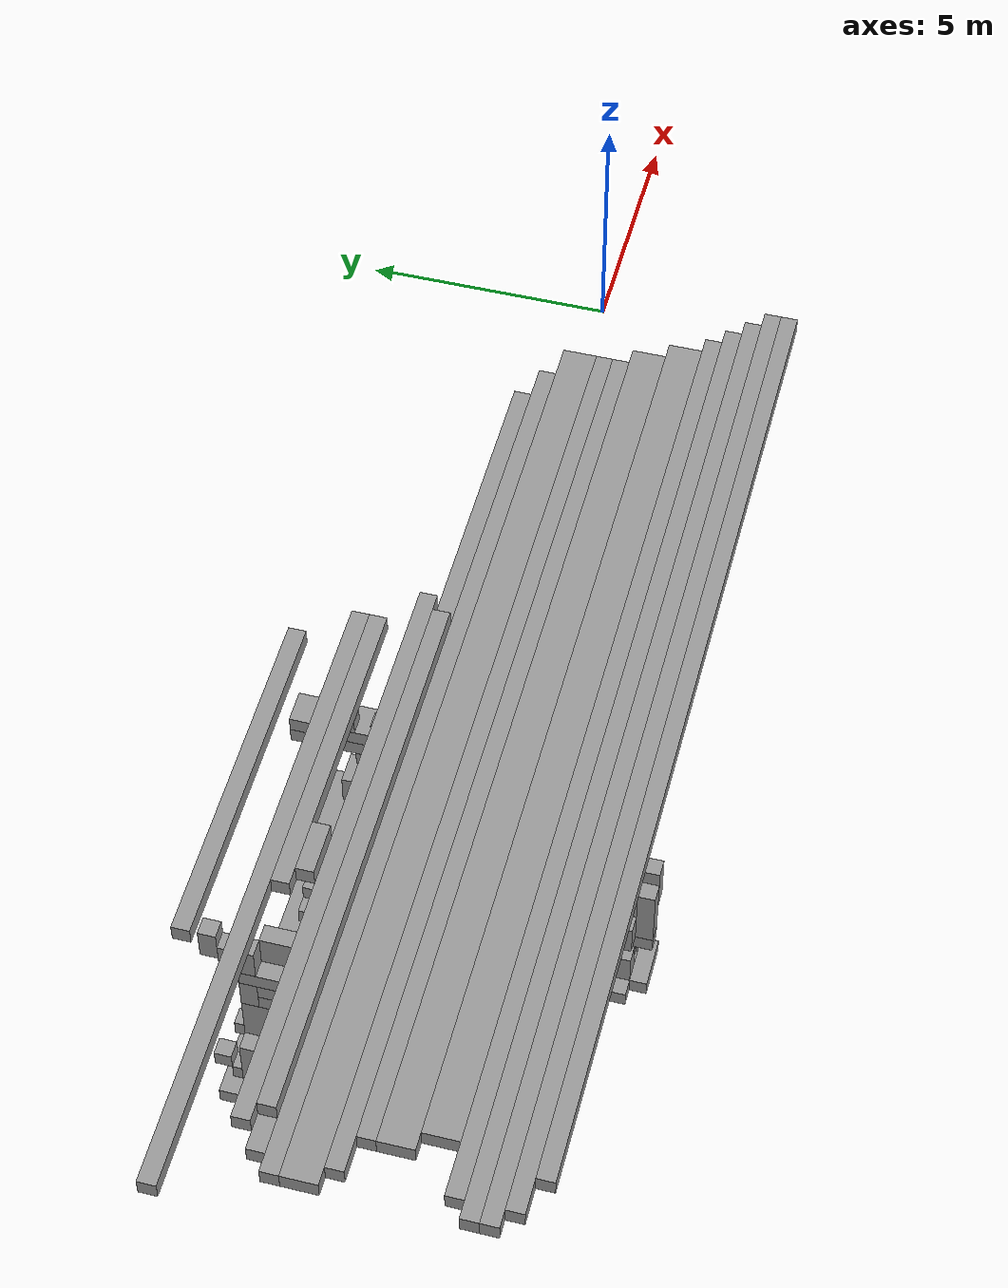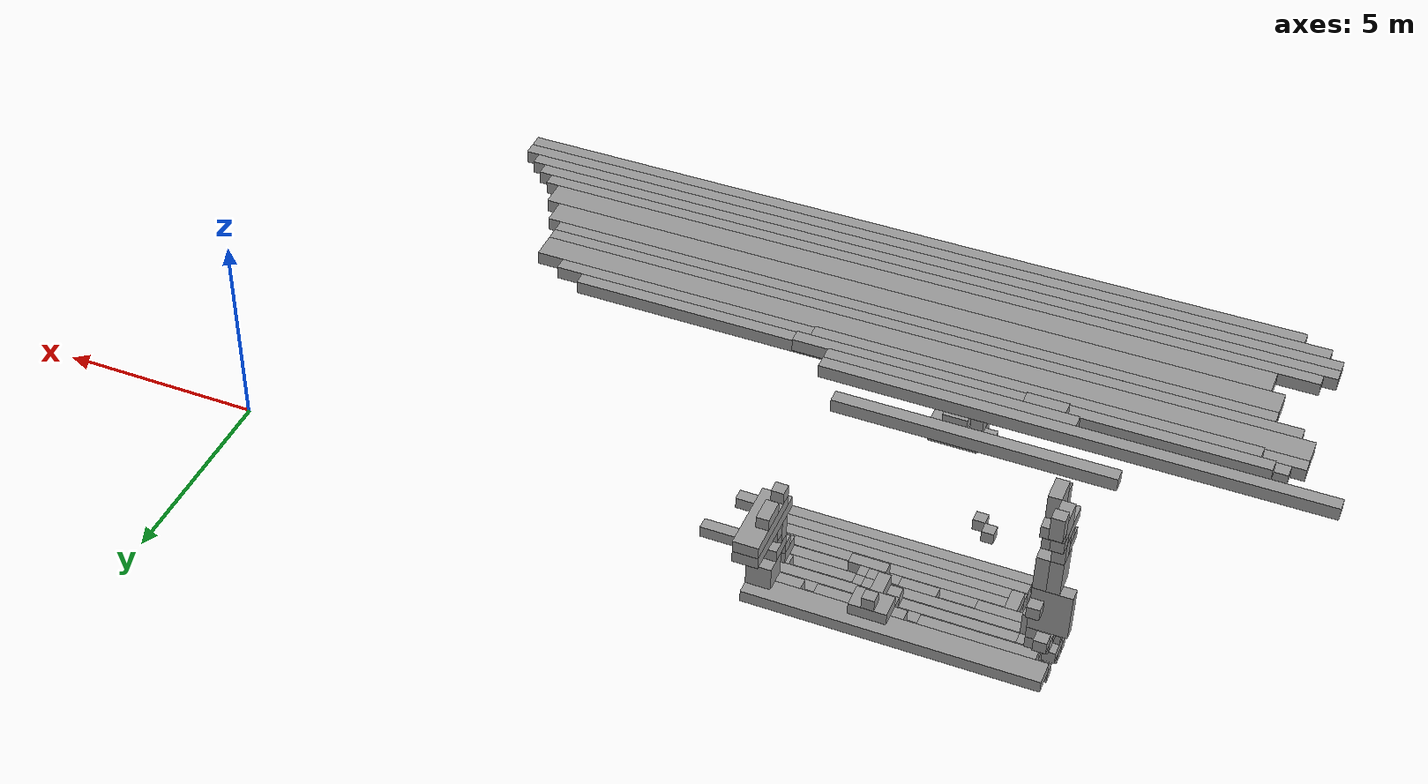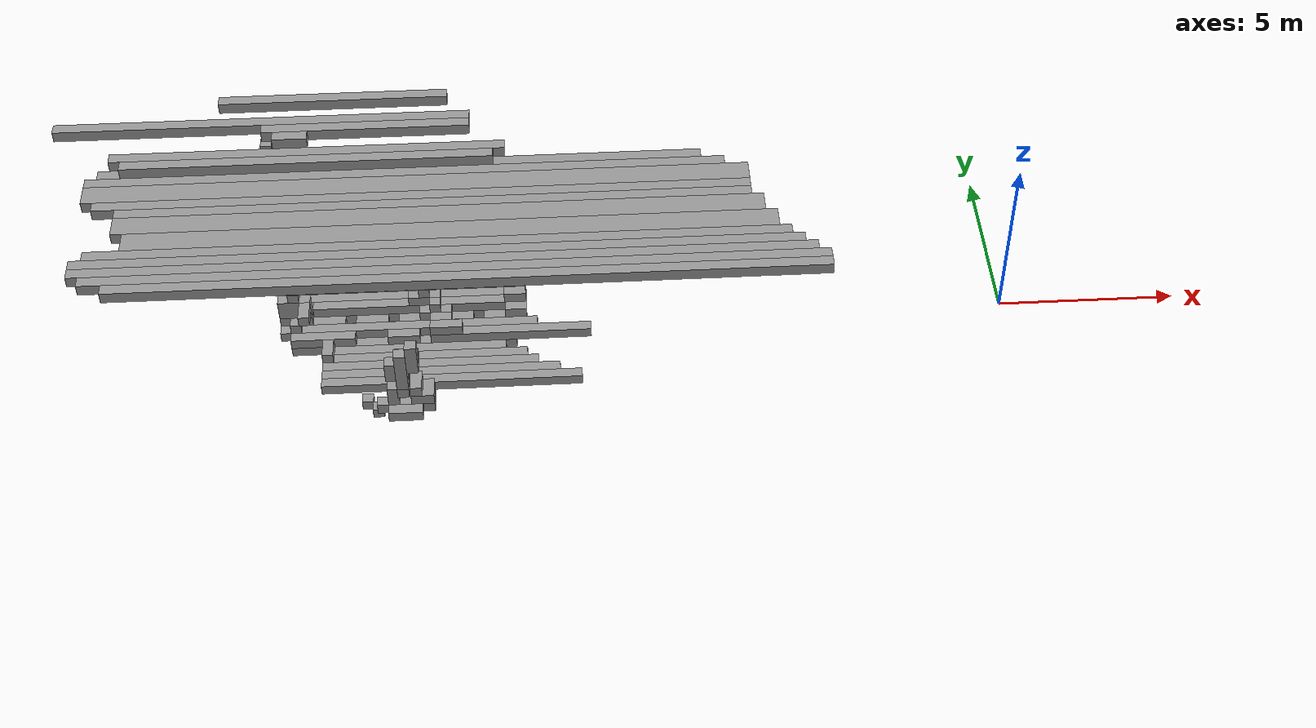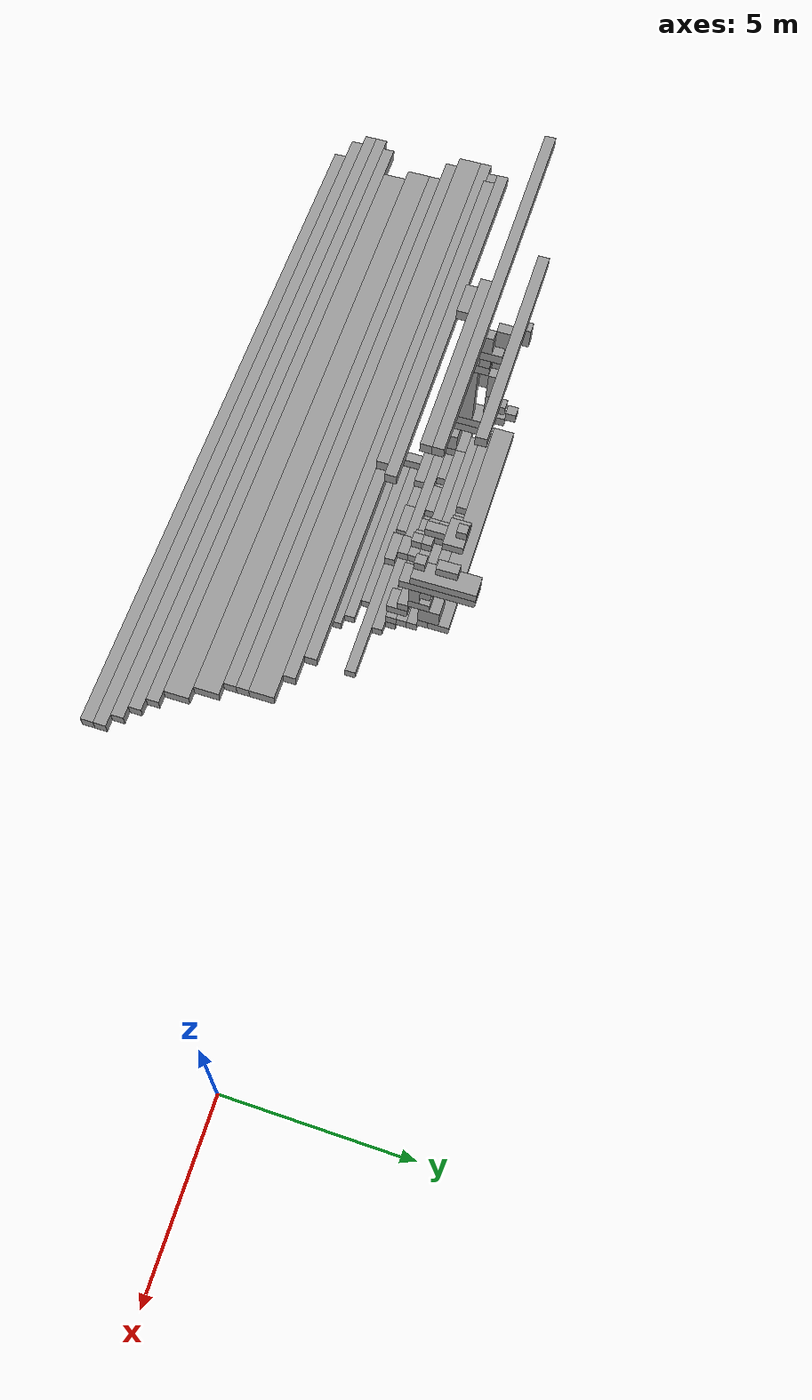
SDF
<sdf version="1.6">
 <world name="bt_world">
  <include><uri>model://sun</uri></include>
  <model name="obstacle_241">
   <static>true</static>
   <pose>-20.099999999999998 0.75 7.05 0 0 0</pose>
   <link name="link">
    <collision name="collision">
     <geometry><box><size>10.799999999999999 0.3 0.3</size></box></geometry>
    </collision>
    <visual name="visual">
     <geometry><box><size>10.799999999999999 0.3 0.3</size></box></geometry>
     <material><ambient>0.5 0.5 0.5 1</ambient><diffuse>0.6 0.6 0.6 1</diffuse></material>
    </visual>
   </link>
  </model>
  <model name="obstacle_327">
   <static>true</static>
   <pose>-15.299999999999999 -4.05 6.45 0 0 0</pose>
   <link name="link">
    <collision name="collision">
     <geometry><box><size>18.599999999999998 0.3 0.3</size></box></geometry>
    </collision>
    <visual name="visual">
     <geometry><box><size>18.599999999999998 0.3 0.3</size></box></geometry>
     <material><ambient>0.5 0.5 0.5 1</ambient><diffuse>0.6 0.6 0.6 1</diffuse></material>
    </visual>
   </link>
  </model>
  <model name="obstacle_328">
   <static>true</static>
   <pose>-15.45 -3.75 6.45 0 0 0</pose>
   <link name="link">
    <collision name="collision"><geometry><box><size>18.3 0.3 0.3</size></box></geometry></collision>
    <visual name="visual">
     <geometry><box><size>18.3 0.3 0.3</size></box></geometry>
     <material><ambient>0.5 0.5 0.5 1</ambient><diffuse>0.6 0.6 0.6 1</diffuse></material>
    </visual>
   </link>
  </model>
  <model name="obstacle_330">
   <static>true</static>
   <pose>-16.05 -1.2 6.45 0 0 0</pose>
   <link name="link">
    <collision name="collision">
     <geometry><box><size>17.099999999999998 0.6 0.3</size></box></geometry>
    </collision>
    <visual name="visual">
     <geometry><box><size>17.099999999999998 0.6 0.3</size></box></geometry>
     <material><ambient>0.5 0.5 0.5 1</ambient><diffuse>0.6 0.6 0.6 1</diffuse></material>
    </visual>
   </link>
  </model>
  <model name="obstacle_336">
   <static>true</static>
   <pose>-16.349999999999998 -0.75 6.45 0 0 0</pose>
   <link name="link">
    <collision name="collision"><geometry><box><size>16.5 0.3 0.3</size></box></geometry></collision>
    <visual name="visual">
     <geometry><box><size>16.5 0.3 0.3</size></box></geometry>
     <material><ambient>0.5 0.5 0.5 1</ambient><diffuse>0.6 0.6 0.6 1</diffuse></material>
    </visual>
   </link>
  </model>
  <model name="obstacle_379">
   <static>true</static>
   <pose>-15.0 -4.35 6.45 0 0 0</pose>
   <link name="link">
    <collision name="collision">
     <geometry><box><size>18.599999999999998 0.3 0.3</size></box></geometry>
    </collision>
    <visual name="visual">
     <geometry><box><size>18.599999999999998 0.3 0.3</size></box></geometry>
     <material><ambient>0.5 0.5 0.5 1</ambient><diffuse>0.6 0.6 0.6 1</diffuse></material>
    </visual>
   </link>
  </model>
  <model name="obstacle_380">
   <static>true</static>
   <pose>-15.45 -3.4499999999999997 6.45 0 0 0</pose>
   <link name="link">
    <collision name="collision"><geometry><box><size>17.7 0.3 0.3</size></box></geometry></collision>
    <visual name="visual">
     <geometry><box><size>17.7 0.3 0.3</size></box></geometry>
     <material><ambient>0.5 0.5 0.5 1</ambient><diffuse>0.6 0.6 0.6 1</diffuse></material>
    </visual>
   </link>
  </model>
  <model name="obstacle_381">
   <static>true</static>
   <pose>-15.899999999999999 -1.65 6.45 0 0 0</pose>
   <link name="link">
    <collision name="collision"><geometry><box><size>16.8 0.3 0.3</size></box></geometry></collision>
    <visual name="visual">
     <geometry><box><size>16.8 0.3 0.3</size></box></geometry>
     <material><ambient>0.5 0.5 0.5 1</ambient><diffuse>0.6 0.6 0.6 1</diffuse></material>
    </visual>
   </link>
  </model>
  <model name="obstacle_384">
   <static>true</static>
   <pose>-16.5 -0.44999999999999996 6.45 0 0 0</pose>
   <link name="link">
    <collision name="collision"><geometry><box><size>15.6 0.3 0.3</size></box></geometry></collision>
    <visual name="visual">
     <geometry><box><size>15.6 0.3 0.3</size></box></geometry>
     <material><ambient>0.5 0.5 0.5 1</ambient><diffuse>0.6 0.6 0.6 1</diffuse></material>
    </visual>
   </link>
  </model>
  <model name="obstacle_414">
   <static>true</static>
   <pose>-18.9 -0.15 6.75 0 0 0</pose>
   <link name="link">
    <collision name="collision"><geometry><box><size>10.2 0.3 0.3</size></box></geometry></collision>
    <visual name="visual">
     <geometry><box><size>10.2 0.3 0.3</size></box></geometry>
     <material><ambient>0.5 0.5 0.5 1</ambient><diffuse>0.6 0.6 0.6 1</diffuse></material>
    </visual>
   </link>
  </model>
  <model name="obstacle_433">
   <static>true</static>
   <pose>-14.7 -4.6499999999999995 6.45 0 0 0</pose>
   <link name="link">
    <collision name="collision"><geometry><box><size>18.0 0.3 0.3</size></box></geometry></collision>
    <visual name="visual">
     <geometry><box><size>18.0 0.3 0.3</size></box></geometry>
     <material><ambient>0.5 0.5 0.5 1</ambient><diffuse>0.6 0.6 0.6 1</diffuse></material>
    </visual>
   </link>
  </model>
  <model name="obstacle_438">
   <static>true</static>
   <pose>-15.45 -2.4 6.45 0 0 0</pose>
   <link name="link">
    <collision name="collision"><geometry><box><size>16.5 0.6 0.3</size></box></geometry></collision>
    <visual name="visual">
     <geometry><box><size>16.5 0.6 0.3</size></box></geometry>
     <material><ambient>0.5 0.5 0.5 1</ambient><diffuse>0.6 0.6 0.6 1</diffuse></material>
    </visual>
   </link>
  </model>
  <model name="obstacle_443">
   <static>true</static>
   <pose>-15.6 -1.95 6.45 0 0 0</pose>
   <link name="link">
    <collision name="collision"><geometry><box><size>16.2 0.3 0.3</size></box></geometry></collision>
    <visual name="visual">
     <geometry><box><size>16.2 0.3 0.3</size></box></geometry>
     <material><ambient>0.5 0.5 0.5 1</ambient><diffuse>0.6 0.6 0.6 1</diffuse></material>
    </visual>
   </link>
  </model>
  <model name="obstacle_448">
   <static>true</static>
   <pose>-18.9 -0.44999999999999996 6.75 0 0 0</pose>
   <link name="link">
    <collision name="collision"><geometry><box><size>9.6 0.3 0.3</size></box></geometry></collision>
    <visual name="visual">
     <geometry><box><size>9.6 0.3 0.3</size></box></geometry>
     <material><ambient>0.5 0.5 0.5 1</ambient><diffuse>0.6 0.6 0.6 1</diffuse></material>
    </visual>
   </link>
  </model>
  <model name="obstacle_479">
   <static>true</static>
   <pose>-15.149999999999999 -3.0 6.45 0 0 0</pose>
   <link name="link">
    <collision name="collision"><geometry><box><size>16.5 0.6 0.3</size></box></geometry></collision>
    <visual name="visual">
     <geometry><box><size>16.5 0.6 0.3</size></box></geometry>
     <material><ambient>0.5 0.5 0.5 1</ambient><diffuse>0.6 0.6 0.6 1</diffuse></material>
    </visual>
   </link>
  </model>
  <model name="obstacle_751">
   <static>true</static>
   <pose>-18.3 1.65 7.05 0 0 0</pose>
   <link name="link">
    <collision name="collision"><geometry><box><size>6.0 0.3 0.3</size></box></geometry></collision>
    <visual name="visual">
     <geometry><box><size>6.0 0.3 0.3</size></box></geometry>
     <material><ambient>0.5 0.5 0.5 1</ambient><diffuse>0.6 0.6 0.6 1</diffuse></material>
    </visual>
   </link>
  </model>
  <model name="obstacle_859">
   <static>true</static>
   <pose>-20.25 1.05 2.4 0 0 0</pose>
   <link name="link">
    <collision name="collision">
     <geometry><box><size>0.8999999999999999 0.3 1.2</size></box></geometry>
    </collision>
    <visual name="visual">
     <geometry><box><size>0.8999999999999999 0.3 1.2</size></box></geometry>
     <material><ambient>0.5 0.5 0.5 1</ambient><diffuse>0.6 0.6 0.6 1</diffuse></material>
    </visual>
   </link>
  </model>
  <model name="obstacle_915">
   <static>true</static>
   <pose>-18.3 -0.15 0.15 0 0 0</pose>
   <link name="link">
    <collision name="collision"><geometry><box><size>4.2 0.3 0.3</size></box></geometry></collision>
    <visual name="visual">
     <geometry><box><size>4.2 0.3 0.3</size></box></geometry>
     <material><ambient>0.5 0.5 0.5 1</ambient><diffuse>0.6 0.6 0.6 1</diffuse></material>
    </visual>
   </link>
  </model>
  <model name="obstacle_916">
   <static>true</static>
   <pose>-19.5 0.15 0.15 0 0 0</pose>
   <link name="link">
    <collision name="collision">
     <geometry><box><size>1.7999999999999998 0.3 0.3</size></box></geometry>
    </collision>
    <visual name="visual">
     <geometry><box><size>1.7999999999999998 0.3 0.3</size></box></geometry>
     <material><ambient>0.5 0.5 0.5 1</ambient><diffuse>0.6 0.6 0.6 1</diffuse></material>
    </visual>
   </link>
  </model>
  <model name="obstacle_917">
   <static>true</static>
   <pose>-19.95 0.3 0.44999999999999996 0 0 0</pose>
   <link name="link">
    <collision name="collision">
     <geometry><box><size>0.8999999999999999 0.6 0.3</size></box></geometry>
    </collision>
    <visual name="visual">
     <geometry><box><size>0.8999999999999999 0.6 0.3</size></box></geometry>
     <material><ambient>0.5 0.5 0.5 1</ambient><diffuse>0.6 0.6 0.6 1</diffuse></material>
    </visual>
   </link>
  </model>
  <model name="obstacle_918">
   <static>true</static>
   <pose>-19.95 0.15 0.8999999999999999 0 0 0</pose>
   <link name="link">
    <collision name="collision">
     <geometry><box><size>0.8999999999999999 0.3 0.6</size></box></geometry>
    </collision>
    <visual name="visual">
     <geometry><box><size>0.8999999999999999 0.3 0.6</size></box></geometry>
     <material><ambient>0.5 0.5 0.5 1</ambient><diffuse>0.6 0.6 0.6 1</diffuse></material>
    </visual>
   </link>
  </model>
  <model name="obstacle_919">
   <static>true</static>
   <pose>-20.099999999999998 0.6 1.65 0 0 0</pose>
   <link name="link">
    <collision name="collision"><geometry><box><size>0.6 1.2 0.3</size></box></geometry></collision>
    <visual name="visual">
     <geometry><box><size>0.6 1.2 0.3</size></box></geometry>
     <material><ambient>0.5 0.5 0.5 1</ambient><diffuse>0.6 0.6 0.6 1</diffuse></material>
    </visual>
   </link>
  </model>
  <model name="obstacle_920">
   <static>true</static>
   <pose>-20.099999999999998 0.6 4.05 0 0 0</pose>
   <link name="link">
    <collision name="collision"><geometry><box><size>0.6 0.6 0.3</size></box></geometry></collision>
    <visual name="visual">
     <geometry><box><size>0.6 0.6 0.3</size></box></geometry>
     <material><ambient>0.5 0.5 0.5 1</ambient><diffuse>0.6 0.6 0.6 1</diffuse></material>
    </visual>
   </link>
  </model>
  <model name="obstacle_921">
   <static>true</static>
   <pose>-20.099999999999998 0.75 4.6499999999999995 0 0 0</pose>
   <link name="link">
    <collision name="collision">
     <geometry><box><size>0.6 0.8999999999999999 0.3</size></box></geometry>
    </collision>
    <visual name="visual">
     <geometry><box><size>0.6 0.8999999999999999 0.3</size></box></geometry>
     <material><ambient>0.5 0.5 0.5 1</ambient><diffuse>0.6 0.6 0.6 1</diffuse></material>
    </visual>
   </link>
  </model>
  <model name="obstacle_923">
   <static>true</static>
   <pose>-20.25 0.8999999999999999 3.4499999999999997 0 0 0</pose>
   <link name="link">
    <collision name="collision">
     <geometry><box><size>0.3 0.6 0.8999999999999999</size></box></geometry>
    </collision>
    <visual name="visual">
     <geometry><box><size>0.3 0.6 0.8999999999999999</size></box></geometry>
     <material><ambient>0.5 0.5 0.5 1</ambient><diffuse>0.6 0.6 0.6 1</diffuse></material>
    </visual>
   </link>
  </model>
  <model name="obstacle_924">
   <static>true</static>
   <pose>-20.099999999999998 0.75 4.35 0 0 0</pose>
   <link name="link">
    <collision name="collision"><geometry><box><size>0.6 0.3 0.3</size></box></geometry></collision>
    <visual name="visual">
     <geometry><box><size>0.6 0.3 0.3</size></box></geometry>
     <material><ambient>0.5 0.5 0.5 1</ambient><diffuse>0.6 0.6 0.6 1</diffuse></material>
    </visual>
   </link>
  </model>
  <model name="obstacle_925">
   <static>true</static>
   <pose>-17.25 1.05 0.44999999999999996 0 0 0</pose>
   <link name="link">
    <collision name="collision"><geometry><box><size>6.3 0.3 0.3</size></box></geometry></collision>
    <visual name="visual">
     <geometry><box><size>6.3 0.3 0.3</size></box></geometry>
     <material><ambient>0.5 0.5 0.5 1</ambient><diffuse>0.6 0.6 0.6 1</diffuse></material>
    </visual>
   </link>
  </model>
  <model name="obstacle_926">
   <static>true</static>
   <pose>-20.25 1.05 4.2 0 0 0</pose>
   <link name="link">
    <collision name="collision"><geometry><box><size>0.3 0.3 0.6</size></box></geometry></collision>
    <visual name="visual">
     <geometry><box><size>0.3 0.3 0.6</size></box></geometry>
     <material><ambient>0.5 0.5 0.5 1</ambient><diffuse>0.6 0.6 0.6 1</diffuse></material>
    </visual>
   </link>
  </model>
  <model name="obstacle_927">
   <static>true</static>
   <pose>-20.25 1.2 5.1 0 0 0</pose>
   <link name="link">
    <collision name="collision"><geometry><box><size>0.3 0.6 0.6</size></box></geometry></collision>
    <visual name="visual">
     <geometry><box><size>0.3 0.6 0.6</size></box></geometry>
     <material><ambient>0.5 0.5 0.5 1</ambient><diffuse>0.6 0.6 0.6 1</diffuse></material>
    </visual>
   </link>
  </model>
  <model name="obstacle_928">
   <static>true</static>
   <pose>-16.95 1.5 0.75 0 0 0</pose>
   <link name="link">
    <collision name="collision">
     <geometry><box><size>6.8999999999999995 0.6 0.3</size></box></geometry>
    </collision>
    <visual name="visual">
     <geometry><box><size>6.8999999999999995 0.6 0.3</size></box></geometry>
     <material><ambient>0.5 0.5 0.5 1</ambient><diffuse>0.6 0.6 0.6 1</diffuse></material>
    </visual>
   </link>
  </model>
  <model name="obstacle_929">
   <static>true</static>
   <pose>-20.25 1.3499999999999999 1.65 0 0 0</pose>
   <link name="link">
    <collision name="collision"><geometry><box><size>0.3 0.3 0.3</size></box></geometry></collision>
    <visual name="visual">
     <geometry><box><size>0.3 0.3 0.3</size></box></geometry>
     <material><ambient>0.5 0.5 0.5 1</ambient><diffuse>0.6 0.6 0.6 1</diffuse></material>
    </visual>
   </link>
  </model>
  <model name="obstacle_930">
   <static>true</static>
   <pose>-20.25 1.3499999999999999 4.6499999999999995 0 0 0</pose>
   <link name="link">
    <collision name="collision"><geometry><box><size>0.3 0.3 0.3</size></box></geometry></collision>
    <visual name="visual">
     <geometry><box><size>0.3 0.3 0.3</size></box></geometry>
     <material><ambient>0.5 0.5 0.5 1</ambient><diffuse>0.6 0.6 0.6 1</diffuse></material>
    </visual>
   </link>
  </model>
  <model name="obstacle_931">
   <static>true</static>
   <pose>-20.25 1.65 1.95 0 0 0</pose>
   <link name="link">
    <collision name="collision"><geometry><box><size>0.3 0.3 0.3</size></box></geometry></collision>
    <visual name="visual">
     <geometry><box><size>0.3 0.3 0.3</size></box></geometry>
     <material><ambient>0.5 0.5 0.5 1</ambient><diffuse>0.6 0.6 0.6 1</diffuse></material>
    </visual>
   </link>
  </model>
  <model name="obstacle_932">
   <static>true</static>
   <pose>-20.25 1.65 5.3999999999999995 0 0 0</pose>
   <link name="link">
    <collision name="collision"><geometry><box><size>0.3 0.3 0.6</size></box></geometry></collision>
    <visual name="visual">
     <geometry><box><size>0.3 0.3 0.6</size></box></geometry>
     <material><ambient>0.5 0.5 0.5 1</ambient><diffuse>0.6 0.6 0.6 1</diffuse></material>
    </visual>
   </link>
  </model>
  <model name="obstacle_943">
   <static>true</static>
   <pose>-16.95 -0.3 -0.15 0 0 0</pose>
   <link name="link">
    <collision name="collision"><geometry><box><size>6.3 0.6 0.3</size></box></geometry></collision>
    <visual name="visual">
     <geometry><box><size>6.3 0.6 0.3</size></box></geometry>
     <material><ambient>0.5 0.5 0.5 1</ambient><diffuse>0.6 0.6 0.6 1</diffuse></material>
    </visual>
   </link>
  </model>
  <model name="obstacle_944">
   <static>true</static>
   <pose>-19.2 -0.44999999999999996 0.15 0 0 0</pose>
   <link name="link">
    <collision name="collision">
     <geometry><box><size>1.7999999999999998 0.3 0.3</size></box></geometry>
    </collision>
    <visual name="visual">
     <geometry><box><size>1.7999999999999998 0.3 0.3</size></box></geometry>
     <material><ambient>0.5 0.5 0.5 1</ambient><diffuse>0.6 0.6 0.6 1</diffuse></material>
    </visual>
   </link>
  </model>
  <model name="obstacle_945">
   <static>true</static>
   <pose>-19.95 -0.15 0.44999999999999996 0 0 0</pose>
   <link name="link">
    <collision name="collision"><geometry><box><size>0.3 0.3 0.3</size></box></geometry></collision>
    <visual name="visual">
     <geometry><box><size>0.3 0.3 0.3</size></box></geometry>
     <material><ambient>0.5 0.5 0.5 1</ambient><diffuse>0.6 0.6 0.6 1</diffuse></material>
    </visual>
   </link>
  </model>
  <model name="obstacle_946">
   <static>true</static>
   <pose>-17.099999999999998 0.15 -0.15 0 0 0</pose>
   <link name="link">
    <collision name="collision"><geometry><box><size>6.0 0.3 0.3</size></box></geometry></collision>
    <visual name="visual">
     <geometry><box><size>6.0 0.3 0.3</size></box></geometry>
     <material><ambient>0.5 0.5 0.5 1</ambient><diffuse>0.6 0.6 0.6 1</diffuse></material>
    </visual>
   </link>
  </model>
  <model name="obstacle_947">
   <static>true</static>
   <pose>-19.95 0.6 1.3499999999999999 0 0 0</pose>
   <link name="link">
    <collision name="collision"><geometry><box><size>0.3 1.2 0.3</size></box></geometry></collision>
    <visual name="visual">
     <geometry><box><size>0.3 1.2 0.3</size></box></geometry>
     <material><ambient>0.5 0.5 0.5 1</ambient><diffuse>0.6 0.6 0.6 1</diffuse></material>
    </visual>
   </link>
  </model>
  <model name="obstacle_948">
   <static>true</static>
   <pose>-19.95 0.3 2.85 0 0 0</pose>
   <link name="link">
    <collision name="collision"><geometry><box><size>0.3 0.6 2.1</size></box></geometry></collision>
    <visual name="visual">
     <geometry><box><size>0.3 0.6 2.1</size></box></geometry>
     <material><ambient>0.5 0.5 0.5 1</ambient><diffuse>0.6 0.6 0.6 1</diffuse></material>
    </visual>
   </link>
  </model>
  <model name="obstacle_949">
   <static>true</static>
   <pose>-19.95 0.15 4.5 0 0 0</pose>
   <link name="link">
    <collision name="collision"><geometry><box><size>0.3 0.3 1.2</size></box></geometry></collision>
    <visual name="visual">
     <geometry><box><size>0.3 0.3 1.2</size></box></geometry>
     <material><ambient>0.5 0.5 0.5 1</ambient><diffuse>0.6 0.6 0.6 1</diffuse></material>
    </visual>
   </link>
  </model>
  <model name="obstacle_950">
   <static>true</static>
   <pose>-18.3 0.44999999999999996 0.15 0 0 0</pose>
   <link name="link">
    <collision name="collision">
     <geometry><box><size>3.5999999999999996 0.3 0.3</size></box></geometry>
    </collision>
    <visual name="visual">
     <geometry><box><size>3.5999999999999996 0.3 0.3</size></box></geometry>
     <material><ambient>0.5 0.5 0.5 1</ambient><diffuse>0.6 0.6 0.6 1</diffuse></material>
    </visual>
   </link>
  </model>
  <model name="obstacle_951">
   <static>true</static>
   <pose>-19.95 0.44999999999999996 4.35 0 0 0</pose>
   <link name="link">
    <collision name="collision"><geometry><box><size>0.3 0.3 0.3</size></box></geometry></collision>
    <visual name="visual">
     <geometry><box><size>0.3 0.3 0.3</size></box></geometry>
     <material><ambient>0.5 0.5 0.5 1</ambient><diffuse>0.6 0.6 0.6 1</diffuse></material>
    </visual>
   </link>
  </model>
  <model name="obstacle_952">
   <static>true</static>
   <pose>-19.95 0.6 5.1 0 0 0</pose>
   <link name="link">
    <collision name="collision"><geometry><box><size>0.3 0.6 0.6</size></box></geometry></collision>
    <visual name="visual">
     <geometry><box><size>0.3 0.6 0.6</size></box></geometry>
     <material><ambient>0.5 0.5 0.5 1</ambient><diffuse>0.6 0.6 0.6 1</diffuse></material>
    </visual>
   </link>
  </model>
  <model name="obstacle_953">
   <static>true</static>
   <pose>-17.4 0.44999999999999996 7.05 0 0 0</pose>
   <link name="link">
    <collision name="collision">
     <geometry><box><size>5.3999999999999995 0.3 0.3</size></box></geometry>
    </collision>
    <visual name="visual">
     <geometry><box><size>5.3999999999999995 0.3 0.3</size></box></geometry>
     <material><ambient>0.5 0.5 0.5 1</ambient><diffuse>0.6 0.6 0.6 1</diffuse></material>
    </visual>
   </link>
  </model>
  <model name="obstacle_954">
   <static>true</static>
   <pose>-16.8 0.75 0.44999999999999996 0 0 0</pose>
   <link name="link">
    <collision name="collision"><geometry><box><size>6.6 0.3 0.3</size></box></geometry></collision>
    <visual name="visual">
     <geometry><box><size>6.6 0.3 0.3</size></box></geometry>
     <material><ambient>0.5 0.5 0.5 1</ambient><diffuse>0.6 0.6 0.6 1</diffuse></material>
    </visual>
   </link>
  </model>
  <model name="obstacle_955">
   <static>true</static>
   <pose>-18.75 1.05 0.75 0 0 0</pose>
   <link name="link">
    <collision name="collision">
     <geometry><box><size>2.6999999999999997 0.3 0.3</size></box></geometry>
    </collision>
    <visual name="visual">
     <geometry><box><size>2.6999999999999997 0.3 0.3</size></box></geometry>
     <material><ambient>0.5 0.5 0.5 1</ambient><diffuse>0.6 0.6 0.6 1</diffuse></material>
    </visual>
   </link>
  </model>
  <model name="obstacle_956">
   <static>true</static>
   <pose>-19.95 1.05 3.4499999999999997 0 0 0</pose>
   <link name="link">
    <collision name="collision">
     <geometry><box><size>0.3 0.3 0.8999999999999999</size></box></geometry>
    </collision>
    <visual name="visual">
     <geometry><box><size>0.3 0.3 0.8999999999999999</size></box></geometry>
     <material><ambient>0.5 0.5 0.5 1</ambient><diffuse>0.6 0.6 0.6 1</diffuse></material>
    </visual>
   </link>
  </model>
  <model name="obstacle_957">
   <static>true</static>
   <pose>-19.95 1.3499999999999999 2.55 0 0 0</pose>
   <link name="link">
    <collision name="collision"><geometry><box><size>0.3 0.3 0.3</size></box></geometry></collision>
    <visual name="visual">
     <geometry><box><size>0.3 0.3 0.3</size></box></geometry>
     <material><ambient>0.5 0.5 0.5 1</ambient><diffuse>0.6 0.6 0.6 1</diffuse></material>
    </visual>
   </link>
  </model>
  <model name="obstacle_978">
   <static>true</static>
   <pose>-19.65 -0.3 1.05 0 0 0</pose>
   <link name="link">
    <collision name="collision"><geometry><box><size>0.3 0.6 0.3</size></box></geometry></collision>
    <visual name="visual">
     <geometry><box><size>0.3 0.6 0.3</size></box></geometry>
     <material><ambient>0.5 0.5 0.5 1</ambient><diffuse>0.6 0.6 0.6 1</diffuse></material>
    </visual>
   </link>
  </model>
  <model name="obstacle_979">
   <static>true</static>
   <pose>-19.65 -0.15 6.45 0 0 0</pose>
   <link name="link">
    <collision name="collision"><geometry><box><size>0.3 0.3 0.3</size></box></geometry></collision>
    <visual name="visual">
     <geometry><box><size>0.3 0.3 0.3</size></box></geometry>
     <material><ambient>0.5 0.5 0.5 1</ambient><diffuse>0.6 0.6 0.6 1</diffuse></material>
    </visual>
   </link>
  </model>
  <model name="obstacle_980">
   <static>true</static>
   <pose>-19.349999999999998 0.15 7.05 0 0 0</pose>
   <link name="link">
    <collision name="collision">
     <geometry><box><size>0.8999999999999999 0.3 0.3</size></box></geometry>
    </collision>
    <visual name="visual">
     <geometry><box><size>0.8999999999999999 0.3 0.3</size></box></geometry>
     <material><ambient>0.5 0.5 0.5 1</ambient><diffuse>0.6 0.6 0.6 1</diffuse></material>
    </visual>
   </link>
  </model>
  <model name="obstacle_998">
   <static>true</static>
   <pose>-16.5 0.44999999999999996 0.44999999999999996 0 0 0</pose>
   <link name="link">
    <collision name="collision"><geometry><box><size>6.0 0.3 0.3</size></box></geometry></collision>
    <visual name="visual">
     <geometry><box><size>6.0 0.3 0.3</size></box></geometry>
     <material><ambient>0.5 0.5 0.5 1</ambient><diffuse>0.6 0.6 0.6 1</diffuse></material>
    </visual>
   </link>
  </model>
  <model name="obstacle_999">
   <static>true</static>
   <pose>-18.9 1.3499999999999999 0.44999999999999996 0 0 0</pose>
   <link name="link">
    <collision name="collision"><geometry><box><size>1.2 0.3 0.3</size></box></geometry></collision>
    <visual name="visual">
     <geometry><box><size>1.2 0.3 0.3</size></box></geometry>
     <material><ambient>0.5 0.5 0.5 1</ambient><diffuse>0.6 0.6 0.6 1</diffuse></material>
    </visual>
   </link>
  </model>
  <model name="obstacle_1009">
   <static>true</static>
   <pose>-15.6 -1.95 -0.15 0 0 0</pose>
   <link name="link">
    <collision name="collision"><geometry><box><size>7.199999999999999 0.3 0.3</size></box></geometry></collision>
    <visual name="visual">
     <geometry><box><size>7.199999999999999 0.3 0.3</size></box></geometry>
     <material><ambient>0.5 0.5 0.5 1</ambient><diffuse>0.6 0.6 0.6 1</diffuse></material>
    </visual>
   </link>
  </model>
  <model name="obstacle_1010">
   <static>true</static>
   <pose>-15.899999999999999 -1.65 -0.15 0 0 0</pose>
   <link name="link">
    <collision name="collision"><geometry><box><size>6.6 0.3 0.3</size></box></geometry></collision>
    <visual name="visual">
     <geometry><box><size>6.6 0.3 0.3</size></box></geometry>
     <material><ambient>0.5 0.5 0.5 1</ambient><diffuse>0.6 0.6 0.6 1</diffuse></material>
    </visual>
   </link>
  </model>
  <model name="obstacle_1011">
   <static>true</static>
   <pose>-16.2 -1.3499999999999999 -0.15 0 0 0</pose>
   <link name="link">
    <collision name="collision"><geometry><box><size>6.0 0.3 0.3</size></box></geometry></collision>
    <visual name="visual">
     <geometry><box><size>6.0 0.3 0.3</size></box></geometry>
     <material><ambient>0.5 0.5 0.5 1</ambient><diffuse>0.6 0.6 0.6 1</diffuse></material>
    </visual>
   </link>
  </model>
  <model name="obstacle_1012">
   <static>true</static>
   <pose>-16.349999999999998 -1.05 -0.15 0 0 0</pose>
   <link name="link">
    <collision name="collision"><geometry><box><size>5.7 0.3 0.3</size></box></geometry></collision>
    <visual name="visual">
     <geometry><box><size>5.7 0.3 0.3</size></box></geometry>
     <material><ambient>0.5 0.5 0.5 1</ambient><diffuse>0.6 0.6 0.6 1</diffuse></material>
    </visual>
   </link>
  </model>
  <model name="obstacle_1013">
   <static>true</static>
   <pose>-19.05 -0.8999999999999999 0.15 0 0 0</pose>
   <link name="link">
    <collision name="collision"><geometry><box><size>0.3 0.6 0.3</size></box></geometry></collision>
    <visual name="visual">
     <geometry><box><size>0.3 0.6 0.3</size></box></geometry>
     <material><ambient>0.5 0.5 0.5 1</ambient><diffuse>0.6 0.6 0.6 1</diffuse></material>
    </visual>
   </link>
  </model>
  <model name="obstacle_1014">
   <static>true</static>
   <pose>-16.65 -0.75 -0.15 0 0 0</pose>
   <link name="link">
    <collision name="collision"><geometry><box><size>5.1 0.3 0.3</size></box></geometry></collision>
    <visual name="visual">
     <geometry><box><size>5.1 0.3 0.3</size></box></geometry>
     <material><ambient>0.5 0.5 0.5 1</ambient><diffuse>0.6 0.6 0.6 1</diffuse></material>
    </visual>
   </link>
  </model>
  <model name="obstacle_1058">
   <static>true</static>
   <pose>-17.849999999999998 0.15 0.15 0 0 0</pose>
   <link name="link">
    <collision name="collision">
     <geometry><box><size>0.8999999999999999 0.3 0.3</size></box></geometry>
    </collision>
    <visual name="visual">
     <geometry><box><size>0.8999999999999999 0.3 0.3</size></box></geometry>
     <material><ambient>0.5 0.5 0.5 1</ambient><diffuse>0.6 0.6 0.6 1</diffuse></material>
    </visual>
   </link>
  </model>
  <model name="obstacle_1075">
   <static>true</static>
   <pose>-17.849999999999998 -2.85 0.15 0 0 0</pose>
   <link name="link">
    <collision name="collision"><geometry><box><size>0.3 0.3 0.3</size></box></geometry></collision>
    <visual name="visual">
     <geometry><box><size>0.3 0.3 0.3</size></box></geometry>
     <material><ambient>0.5 0.5 0.5 1</ambient><diffuse>0.6 0.6 0.6 1</diffuse></material>
    </visual>
   </link>
  </model>
  <model name="obstacle_1094">
   <static>true</static>
   <pose>-17.55 -3.15 0.15 0 0 0</pose>
   <link name="link">
    <collision name="collision"><geometry><box><size>0.3 0.3 0.3</size></box></geometry></collision>
    <visual name="visual">
     <geometry><box><size>0.3 0.3 0.3</size></box></geometry>
     <material><ambient>0.5 0.5 0.5 1</ambient><diffuse>0.6 0.6 0.6 1</diffuse></material>
    </visual>
   </link>
  </model>
  <model name="obstacle_1109">
   <static>true</static>
   <pose>-16.65 -4.35 1.65 0 0 0</pose>
   <link name="link">
    <collision name="collision"><geometry><box><size>1.5 0.3 0.3</size></box></geometry></collision>
    <visual name="visual">
     <geometry><box><size>1.5 0.3 0.3</size></box></geometry>
     <material><ambient>0.5 0.5 0.5 1</ambient><diffuse>0.6 0.6 0.6 1</diffuse></material>
    </visual>
   </link>
  </model>
  <model name="obstacle_1110">
   <static>true</static>
   <pose>-16.95 -0.44999999999999996 0.15 0 0 0</pose>
   <link name="link">
    <collision name="collision">
     <geometry><box><size>0.8999999999999999 0.3 0.3</size></box></geometry>
    </collision>
    <visual name="visual">
     <geometry><box><size>0.8999999999999999 0.3 0.3</size></box></geometry>
     <material><ambient>0.5 0.5 0.5 1</ambient><diffuse>0.6 0.6 0.6 1</diffuse></material>
    </visual>
   </link>
  </model>
  <model name="obstacle_1152">
   <static>true</static>
   <pose>-16.65 -4.6499999999999995 1.65 0 0 0</pose>
   <link name="link">
    <collision name="collision">
     <geometry><box><size>0.8999999999999999 0.3 0.3</size></box></geometry>
    </collision>
    <visual name="visual">
     <geometry><box><size>0.8999999999999999 0.3 0.3</size></box></geometry>
     <material><ambient>0.5 0.5 0.5 1</ambient><diffuse>0.6 0.6 0.6 1</diffuse></material>
    </visual>
   </link>
  </model>
  <model name="obstacle_1153">
   <static>true</static>
   <pose>-16.95 -4.35 2.1 0 0 0</pose>
   <link name="link">
    <collision name="collision"><geometry><box><size>0.3 0.3 0.6</size></box></geometry></collision>
    <visual name="visual">
     <geometry><box><size>0.3 0.3 0.6</size></box></geometry>
     <material><ambient>0.5 0.5 0.5 1</ambient><diffuse>0.6 0.6 0.6 1</diffuse></material>
    </visual>
   </link>
  </model>
  <model name="obstacle_1154">
   <static>true</static>
   <pose>-16.8 -4.35 3.0 0 0 0</pose>
   <link name="link">
    <collision name="collision"><geometry><box><size>0.6 0.3 0.6</size></box></geometry></collision>
    <visual name="visual">
     <geometry><box><size>0.6 0.3 0.6</size></box></geometry>
     <material><ambient>0.5 0.5 0.5 1</ambient><diffuse>0.6 0.6 0.6 1</diffuse></material>
    </visual>
   </link>
  </model>
  <model name="obstacle_1155">
   <static>true</static>
   <pose>-16.5 -4.05 1.65 0 0 0</pose>
   <link name="link">
    <collision name="collision"><geometry><box><size>1.2 0.3 0.3</size></box></geometry></collision>
    <visual name="visual">
     <geometry><box><size>1.2 0.3 0.3</size></box></geometry>
     <material><ambient>0.5 0.5 0.5 1</ambient><diffuse>0.6 0.6 0.6 1</diffuse></material>
    </visual>
   </link>
  </model>
  <model name="obstacle_1156">
   <static>true</static>
   <pose>-16.65 0.15 0.15 0 0 0</pose>
   <link name="link">
    <collision name="collision">
     <geometry><box><size>0.8999999999999999 0.3 0.3</size></box></geometry>
    </collision>
    <visual name="visual">
     <geometry><box><size>0.8999999999999999 0.3 0.3</size></box></geometry>
     <material><ambient>0.5 0.5 0.5 1</ambient><diffuse>0.6 0.6 0.6 1</diffuse></material>
    </visual>
   </link>
  </model>
  <model name="obstacle_1157">
   <static>true</static>
   <pose>-16.05 1.05 0.75 0 0 0</pose>
   <link name="link">
    <collision name="collision"><geometry><box><size>2.1 0.3 0.3</size></box></geometry></collision>
    <visual name="visual">
     <geometry><box><size>2.1 0.3 0.3</size></box></geometry>
     <material><ambient>0.5 0.5 0.5 1</ambient><diffuse>0.6 0.6 0.6 1</diffuse></material>
    </visual>
   </link>
  </model>
  <model name="obstacle_1187">
   <static>true</static>
   <pose>-16.65 -4.5 2.55 0 0 0</pose>
   <link name="link">
    <collision name="collision"><geometry><box><size>0.3 0.6 0.3</size></box></geometry></collision>
    <visual name="visual">
     <geometry><box><size>0.3 0.6 0.3</size></box></geometry>
     <material><ambient>0.5 0.5 0.5 1</ambient><diffuse>0.6 0.6 0.6 1</diffuse></material>
    </visual>
   </link>
  </model>
  <model name="obstacle_1188">
   <static>true</static>
   <pose>-16.65 -4.6499999999999995 3.3 0 0 0</pose>
   <link name="link">
    <collision name="collision"><geometry><box><size>0.3 0.3 1.2</size></box></geometry></collision>
    <visual name="visual">
     <geometry><box><size>0.3 0.3 1.2</size></box></geometry>
     <material><ambient>0.5 0.5 0.5 1</ambient><diffuse>0.6 0.6 0.6 1</diffuse></material>
    </visual>
   </link>
  </model>
  <model name="obstacle_1189">
   <static>true</static>
   <pose>-16.5 -4.2 2.25 0 0 0</pose>
   <link name="link">
    <collision name="collision"><geometry><box><size>0.6 0.6 0.3</size></box></geometry></collision>
    <visual name="visual">
     <geometry><box><size>0.6 0.6 0.3</size></box></geometry>
     <material><ambient>0.5 0.5 0.5 1</ambient><diffuse>0.6 0.6 0.6 1</diffuse></material>
    </visual>
   </link>
  </model>
  <model name="obstacle_1190">
   <static>true</static>
   <pose>-16.5 -4.35 3.4499999999999997 0 0 0</pose>
   <link name="link">
    <collision name="collision"><geometry><box><size>0.6 0.3 0.3</size></box></geometry></collision>
    <visual name="visual">
     <geometry><box><size>0.6 0.3 0.3</size></box></geometry>
     <material><ambient>0.5 0.5 0.5 1</ambient><diffuse>0.6 0.6 0.6 1</diffuse></material>
    </visual>
   </link>
  </model>
  <model name="obstacle_1191">
   <static>true</static>
   <pose>-16.349999999999998 0.44999999999999996 0.75 0 0 0</pose>
   <link name="link">
    <collision name="collision">
     <geometry><box><size>0.8999999999999999 0.3 0.3</size></box></geometry>
    </collision>
    <visual name="visual">
     <geometry><box><size>0.8999999999999999 0.3 0.3</size></box></geometry>
     <material><ambient>0.5 0.5 0.5 1</ambient><diffuse>0.6 0.6 0.6 1</diffuse></material>
    </visual>
   </link>
  </model>
  <model name="obstacle_1192">
   <static>true</static>
   <pose>-16.5 0.75 0.75 0 0 0</pose>
   <link name="link">
    <collision name="collision"><geometry><box><size>0.6 0.3 0.3</size></box></geometry></collision>
    <visual name="visual">
     <geometry><box><size>0.6 0.3 0.3</size></box></geometry>
     <material><ambient>0.5 0.5 0.5 1</ambient><diffuse>0.6 0.6 0.6 1</diffuse></material>
    </visual>
   </link>
  </model>
  <model name="obstacle_1193">
   <static>true</static>
   <pose>-16.349999999999998 1.2 1.05 0 0 0</pose>
   <link name="link">
    <collision name="collision">
     <geometry><box><size>0.8999999999999999 0.6 0.3</size></box></geometry>
    </collision>
    <visual name="visual">
     <geometry><box><size>0.8999999999999999 0.6 0.3</size></box></geometry>
     <material><ambient>0.5 0.5 0.5 1</ambient><diffuse>0.6 0.6 0.6 1</diffuse></material>
    </visual>
   </link>
  </model>
  <model name="obstacle_1208">
   <static>true</static>
   <pose>-16.349999999999998 -4.6499999999999995 3.75 0 0 0</pose>
   <link name="link">
    <collision name="collision">
     <geometry><box><size>0.3 0.3 0.8999999999999999</size></box></geometry>
    </collision>
    <visual name="visual">
     <geometry><box><size>0.3 0.3 0.8999999999999999</size></box></geometry>
     <material><ambient>0.5 0.5 0.5 1</ambient><diffuse>0.6 0.6 0.6 1</diffuse></material>
    </visual>
   </link>
  </model>
  <model name="obstacle_1209">
   <static>true</static>
   <pose>-16.2 -4.2 1.95 0 0 0</pose>
   <link name="link">
    <collision name="collision"><geometry><box><size>0.6 0.6 0.3</size></box></geometry></collision>
    <visual name="visual">
     <geometry><box><size>0.6 0.6 0.3</size></box></geometry>
     <material><ambient>0.5 0.5 0.5 1</ambient><diffuse>0.6 0.6 0.6 1</diffuse></material>
    </visual>
   </link>
  </model>
  <model name="obstacle_1210">
   <static>true</static>
   <pose>-16.05 0.15 0.44999999999999996 0 0 0</pose>
   <link name="link">
    <collision name="collision">
     <geometry><box><size>0.8999999999999999 0.3 0.3</size></box></geometry>
    </collision>
    <visual name="visual">
     <geometry><box><size>0.8999999999999999 0.3 0.3</size></box></geometry>
     <material><ambient>0.5 0.5 0.5 1</ambient><diffuse>0.6 0.6 0.6 1</diffuse></material>
    </visual>
   </link>
  </model>
  <model name="obstacle_1211">
   <static>true</static>
   <pose>-16.349999999999998 0.6 1.05 0 0 0</pose>
   <link name="link">
    <collision name="collision"><geometry><box><size>0.3 0.6 0.3</size></box></geometry></collision>
    <visual name="visual">
     <geometry><box><size>0.3 0.6 0.3</size></box></geometry>
     <material><ambient>0.5 0.5 0.5 1</ambient><diffuse>0.6 0.6 0.6 1</diffuse></material>
    </visual>
   </link>
  </model>
  <model name="obstacle_1212">
   <static>true</static>
   <pose>-16.349999999999998 1.3499999999999999 1.3499999999999999 0 0 0</pose>
   <link name="link">
    <collision name="collision"><geometry><box><size>0.3 0.3 0.3</size></box></geometry></collision>
    <visual name="visual">
     <geometry><box><size>0.3 0.3 0.3</size></box></geometry>
     <material><ambient>0.5 0.5 0.5 1</ambient><diffuse>0.6 0.6 0.6 1</diffuse></material>
    </visual>
   </link>
  </model>
  <model name="obstacle_1222">
   <static>true</static>
   <pose>-13.95 -0.44999999999999996 0.15 0 0 0</pose>
   <link name="link">
    <collision name="collision"><geometry><box><size>4.5 0.3 0.3</size></box></geometry></collision>
    <visual name="visual">
     <geometry><box><size>4.5 0.3 0.3</size></box></geometry>
     <material><ambient>0.5 0.5 0.5 1</ambient><diffuse>0.6 0.6 0.6 1</diffuse></material>
    </visual>
   </link>
  </model>
  <model name="obstacle_1223">
   <static>true</static>
   <pose>-15.75 -0.44999999999999996 0.44999999999999996 0 0 0</pose>
   <link name="link">
    <collision name="collision">
     <geometry><box><size>0.8999999999999999 0.3 0.3</size></box></geometry>
    </collision>
    <visual name="visual">
     <geometry><box><size>0.8999999999999999 0.3 0.3</size></box></geometry>
     <material><ambient>0.5 0.5 0.5 1</ambient><diffuse>0.6 0.6 0.6 1</diffuse></material>
    </visual>
   </link>
  </model>
  <model name="obstacle_1224">
   <static>true</static>
   <pose>-15.899999999999999 -0.15 0.44999999999999996 0 0 0</pose>
   <link name="link">
    <collision name="collision"><geometry><box><size>0.6 0.3 0.3</size></box></geometry></collision>
    <visual name="visual">
     <geometry><box><size>0.6 0.3 0.3</size></box></geometry>
     <material><ambient>0.5 0.5 0.5 1</ambient><diffuse>0.6 0.6 0.6 1</diffuse></material>
    </visual>
   </link>
  </model>
  <model name="obstacle_1225">
   <static>true</static>
   <pose>-16.05 0.15 0.75 0 0 0</pose>
   <link name="link">
    <collision name="collision"><geometry><box><size>0.3 0.3 0.3</size></box></geometry></collision>
    <visual name="visual">
     <geometry><box><size>0.3 0.3 0.3</size></box></geometry>
     <material><ambient>0.5 0.5 0.5 1</ambient><diffuse>0.6 0.6 0.6 1</diffuse></material>
    </visual>
   </link>
  </model>
  <model name="obstacle_1239">
   <static>true</static>
   <pose>-14.549999999999999 -0.15 0.15 0 0 0</pose>
   <link name="link">
    <collision name="collision">
     <geometry><box><size>2.6999999999999997 0.3 0.3</size></box></geometry>
    </collision>
    <visual name="visual">
     <geometry><box><size>2.6999999999999997 0.3 0.3</size></box></geometry>
     <material><ambient>0.5 0.5 0.5 1</ambient><diffuse>0.6 0.6 0.6 1</diffuse></material>
    </visual>
   </link>
  </model>
  <model name="obstacle_1240">
   <static>true</static>
   <pose>-15.45 0.15 0.15 0 0 0</pose>
   <link name="link">
    <collision name="collision">
     <geometry><box><size>0.8999999999999999 0.3 0.3</size></box></geometry>
    </collision>
    <visual name="visual">
     <geometry><box><size>0.8999999999999999 0.3 0.3</size></box></geometry>
     <material><ambient>0.5 0.5 0.5 1</ambient><diffuse>0.6 0.6 0.6 1</diffuse></material>
    </visual>
   </link>
  </model>
  <model name="obstacle_1252">
   <static>true</static>
   <pose>-14.7 0.44999999999999996 0.15 0 0 0</pose>
   <link name="link">
    <collision name="collision">
     <geometry><box><size>1.7999999999999998 0.3 0.3</size></box></geometry>
    </collision>
    <visual name="visual">
     <geometry><box><size>1.7999999999999998 0.3 0.3</size></box></geometry>
     <material><ambient>0.5 0.5 0.5 1</ambient><diffuse>0.6 0.6 0.6 1</diffuse></material>
    </visual>
   </link>
  </model>
  <model name="obstacle_1286">
   <static>true</static>
   <pose>-14.1 0.15 0.15 0 0 0</pose>
   <link name="link">
    <collision name="collision"><geometry><box><size>1.2 0.3 0.3</size></box></geometry></collision>
    <visual name="visual">
     <geometry><box><size>1.2 0.3 0.3</size></box></geometry>
     <material><ambient>0.5 0.5 0.5 1</ambient><diffuse>0.6 0.6 0.6 1</diffuse></material>
    </visual>
   </link>
  </model>
  <model name="obstacle_1287">
   <static>true</static>
   <pose>-14.1 1.05 0.75 0 0 0</pose>
   <link name="link">
    <collision name="collision"><geometry><box><size>1.2 0.3 0.3</size></box></geometry></collision>
    <visual name="visual">
     <geometry><box><size>1.2 0.3 0.3</size></box></geometry>
     <material><ambient>0.5 0.5 0.5 1</ambient><diffuse>0.6 0.6 0.6 1</diffuse></material>
    </visual>
   </link>
  </model>
  <model name="obstacle_1314">
   <static>true</static>
   <pose>-13.799999999999999 0.15 0.44999999999999996 0 0 0</pose>
   <link name="link">
    <collision name="collision"><geometry><box><size>0.6 0.3 0.3</size></box></geometry></collision>
    <visual name="visual">
     <geometry><box><size>0.6 0.3 0.3</size></box></geometry>
     <material><ambient>0.5 0.5 0.5 1</ambient><diffuse>0.6 0.6 0.6 1</diffuse></material>
    </visual>
   </link>
  </model>
  <model name="obstacle_1315">
   <static>true</static>
   <pose>-13.799999999999999 0.3 1.05 0 0 0</pose>
   <link name="link">
    <collision name="collision"><geometry><box><size>0.6 0.6 0.3</size></box></geometry></collision>
    <visual name="visual">
     <geometry><box><size>0.6 0.6 0.3</size></box></geometry>
     <material><ambient>0.5 0.5 0.5 1</ambient><diffuse>0.6 0.6 0.6 1</diffuse></material>
    </visual>
   </link>
  </model>
  <model name="obstacle_1317">
   <static>true</static>
   <pose>-13.799999999999999 0.44999999999999996 1.3499999999999999 0 0 0</pose>
   <link name="link">
    <collision name="collision"><geometry><box><size>0.6 0.3 0.3</size></box></geometry></collision>
    <visual name="visual">
     <geometry><box><size>0.6 0.3 0.3</size></box></geometry>
     <material><ambient>0.5 0.5 0.5 1</ambient><diffuse>0.6 0.6 0.6 1</diffuse></material>
    </visual>
   </link>
  </model>
  <model name="obstacle_1318">
   <static>true</static>
   <pose>-13.799999999999999 1.3499999999999999 2.55 0 0 0</pose>
   <link name="link">
    <collision name="collision"><geometry><box><size>0.6 2.1 0.3</size></box></geometry></collision>
    <visual name="visual">
     <geometry><box><size>0.6 2.1 0.3</size></box></geometry>
     <material><ambient>0.5 0.5 0.5 1</ambient><diffuse>0.6 0.6 0.6 1</diffuse></material>
    </visual>
   </link>
  </model>
  <model name="obstacle_1319">
   <static>true</static>
   <pose>-13.799999999999999 0.8999999999999999 1.65 0 0 0</pose>
   <link name="link">
    <collision name="collision"><geometry><box><size>0.6 0.6 0.3</size></box></geometry></collision>
    <visual name="visual">
     <geometry><box><size>0.6 0.6 0.3</size></box></geometry>
     <material><ambient>0.5 0.5 0.5 1</ambient><diffuse>0.6 0.6 0.6 1</diffuse></material>
    </visual>
   </link>
  </model>
  <model name="obstacle_1320">
   <static>true</static>
   <pose>-13.799999999999999 0.75 2.1 0 0 0</pose>
   <link name="link">
    <collision name="collision"><geometry><box><size>0.6 0.3 0.6</size></box></geometry></collision>
    <visual name="visual">
     <geometry><box><size>0.6 0.3 0.6</size></box></geometry>
     <material><ambient>0.5 0.5 0.5 1</ambient><diffuse>0.6 0.6 0.6 1</diffuse></material>
    </visual>
   </link>
  </model>
  <model name="obstacle_1321">
   <static>true</static>
   <pose>-13.799999999999999 1.5 2.85 0 0 0</pose>
   <link name="link">
    <collision name="collision">
     <geometry><box><size>0.6 1.7999999999999998 0.3</size></box></geometry>
    </collision>
    <visual name="visual">
     <geometry><box><size>0.6 1.7999999999999998 0.3</size></box></geometry>
     <material><ambient>0.5 0.5 0.5 1</ambient><diffuse>0.6 0.6 0.6 1</diffuse></material>
    </visual>
   </link>
  </model>
  <model name="obstacle_1322">
   <static>true</static>
   <pose>-13.95 0.75 3.15 0 0 0</pose>
   <link name="link">
    <collision name="collision"><geometry><box><size>0.3 0.3 0.3</size></box></geometry></collision>
    <visual name="visual">
     <geometry><box><size>0.3 0.3 0.3</size></box></geometry>
     <material><ambient>0.5 0.5 0.5 1</ambient><diffuse>0.6 0.6 0.6 1</diffuse></material>
    </visual>
   </link>
  </model>
  <model name="obstacle_1323">
   <static>true</static>
   <pose>-13.799999999999999 1.2 1.2 0 0 0</pose>
   <link name="link">
    <collision name="collision"><geometry><box><size>0.6 0.6 0.6</size></box></geometry></collision>
    <visual name="visual">
     <geometry><box><size>0.6 0.6 0.6</size></box></geometry>
     <material><ambient>0.5 0.5 0.5 1</ambient><diffuse>0.6 0.6 0.6 1</diffuse></material>
    </visual>
   </link>
  </model>
  <model name="obstacle_1324">
   <static>true</static>
   <pose>-13.799999999999999 1.05 2.25 0 0 0</pose>
   <link name="link">
    <collision name="collision"><geometry><box><size>0.6 0.3 0.3</size></box></geometry></collision>
    <visual name="visual">
     <geometry><box><size>0.6 0.3 0.3</size></box></geometry>
     <material><ambient>0.5 0.5 0.5 1</ambient><diffuse>0.6 0.6 0.6 1</diffuse></material>
    </visual>
   </link>
  </model>
  <model name="obstacle_1325">
   <static>true</static>
   <pose>-13.95 1.5 3.15 0 0 0</pose>
   <link name="link">
    <collision name="collision"><geometry><box><size>0.3 0.6 0.3</size></box></geometry></collision>
    <visual name="visual">
     <geometry><box><size>0.3 0.6 0.3</size></box></geometry>
     <material><ambient>0.5 0.5 0.5 1</ambient><diffuse>0.6 0.6 0.6 1</diffuse></material>
    </visual>
   </link>
  </model>
 </world>
</sdf>
